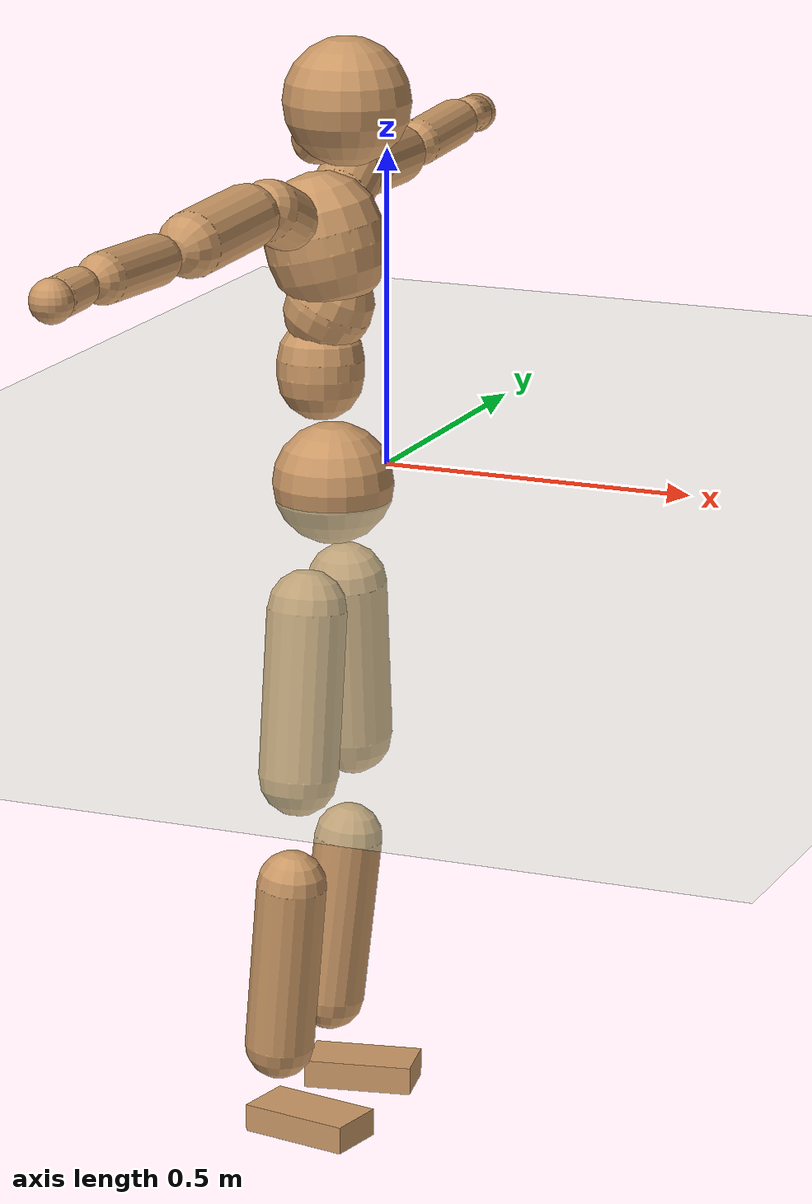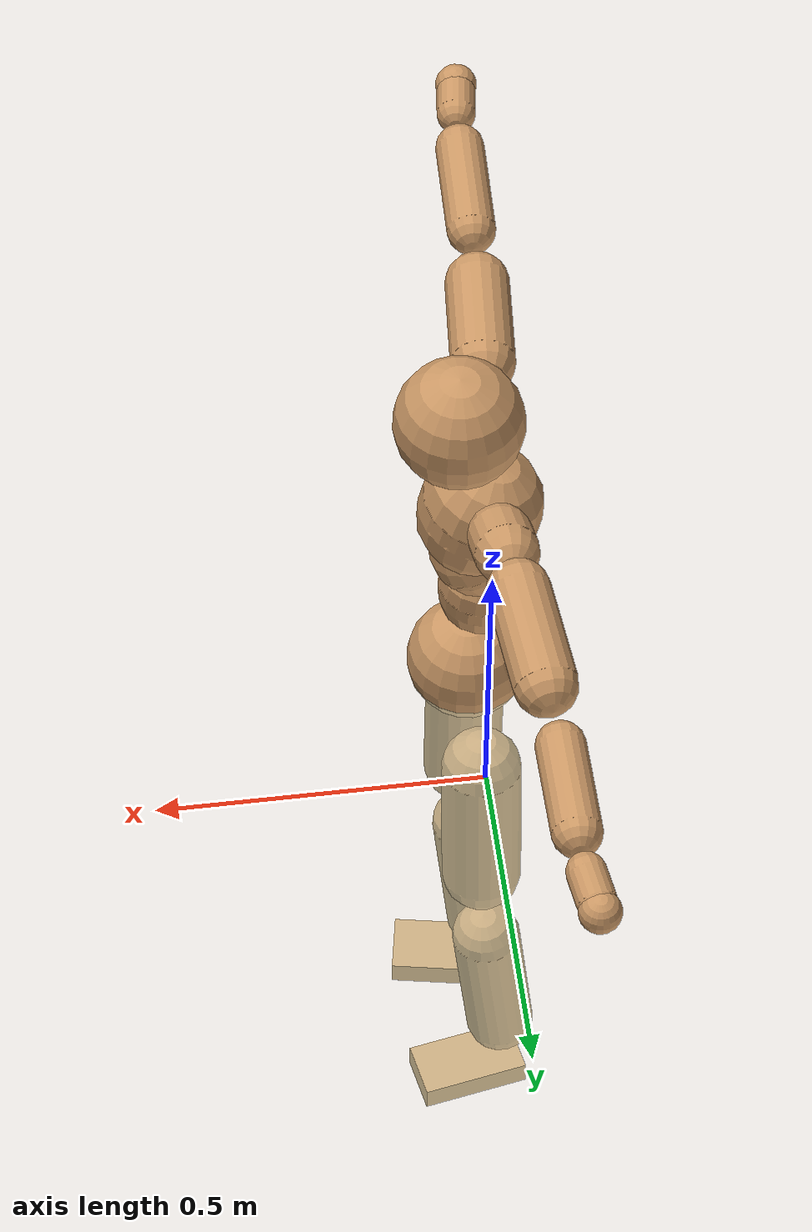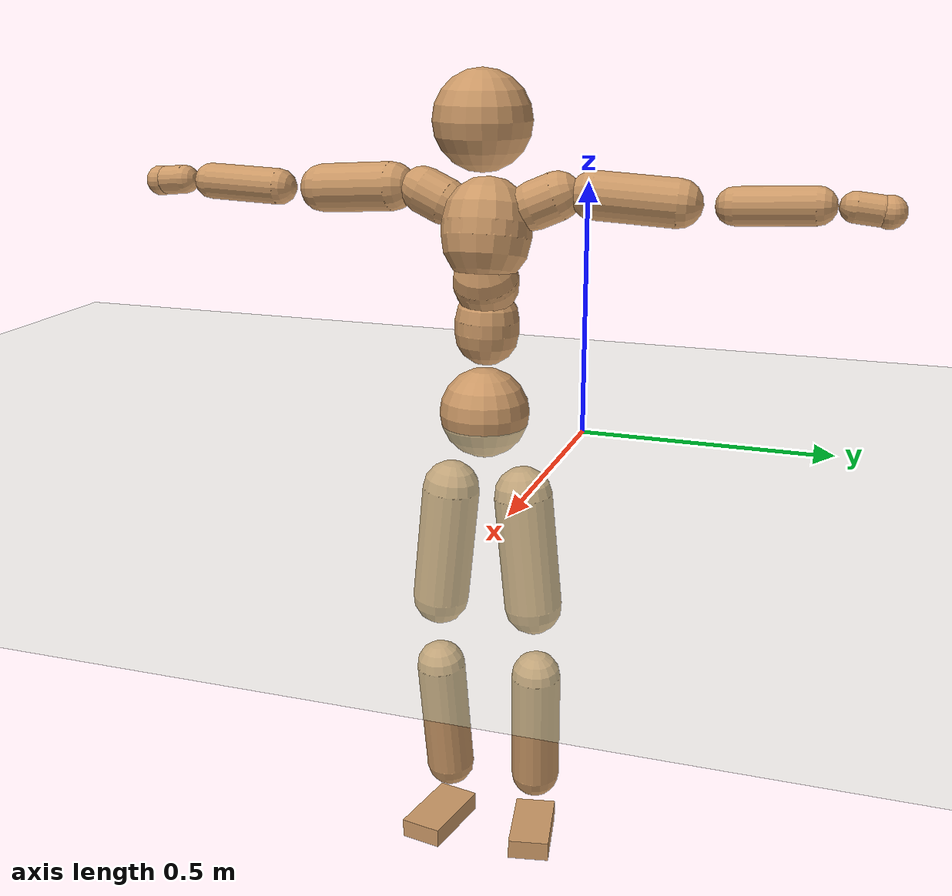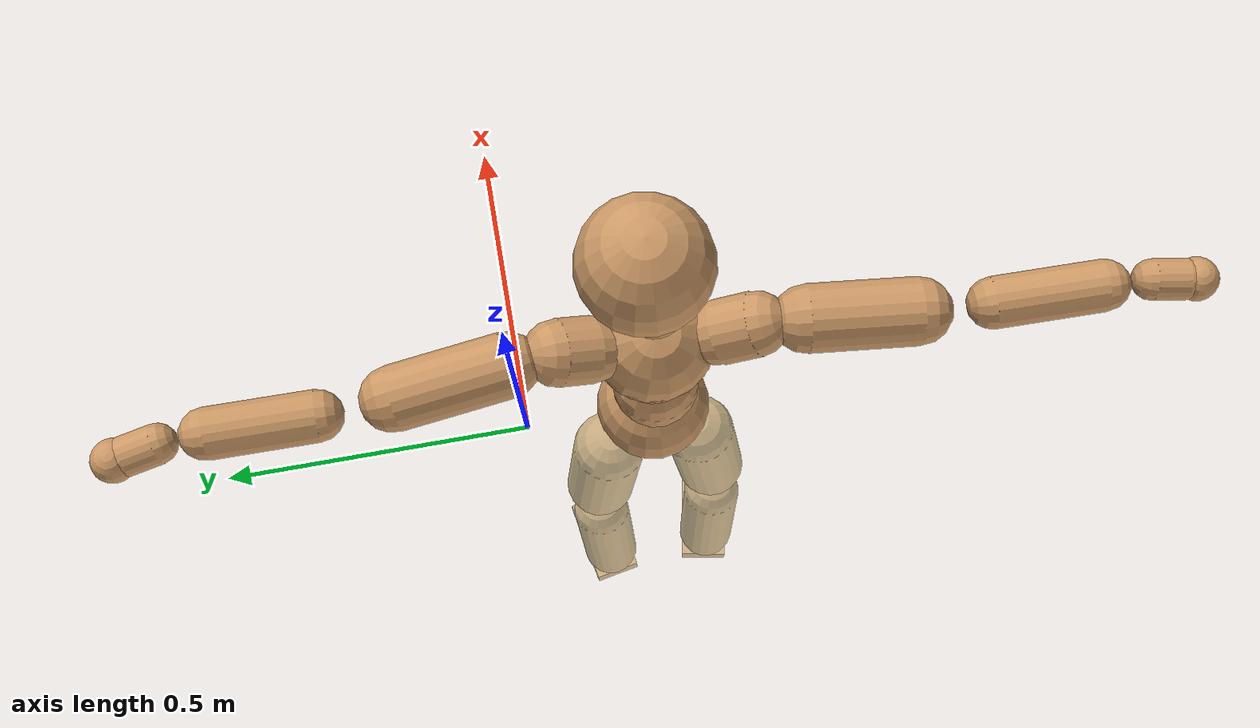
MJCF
<mujoco model="humanoid">
  <compiler coordinate="local" angle="radian"/>
  <default>
    <joint damping="0.0" armature="0.01" stiffness="0.0" limited="true"/>
    <geom conaffinity="1" condim="3" contype="7" margin="0.001" rgba="0.8 0.6 .4 1"/>
  </default>
  <asset>
    <texture type="skybox" builtin="gradient" rgb1=".4 .5 .6" rgb2="0 0 0" width="100" height="100"/>
    <texture builtin="flat" height="1278" mark="cross" markrgb="1 1 1" name="texgeom" random="0.01" rgb1="0.8 0.6 0.4" rgb2="0.8 0.6 0.4" type="cube" width="127"/>
    <texture builtin="checker" height="100" name="texplane" rgb1="0 0 0" rgb2="0.8 0.8 0.8" type="2d" width="100"/>
    <material name="MatPlane" reflectance="0.5" shininess="1" specular="1" texrepeat="60 60" texture="texplane"/>
    <material name="geom" texture="texgeom" texuniform="true"/>
  </asset>
  <worldbody>
    <light cutoff="100" diffuse="1 1 1" dir="-0 0 -1.3" directional="true" exponent="1" pos="0 0 1.3" specular=".1 .1 .1"/>
    <geom conaffinity="1" condim="3" name="floor" pos="0 0 0" rgba="0.8 0.9 0.8 1" size="100 100 .2" type="plane" material="MatPlane"/>
    <body name="Pelvis" pos="-0 -0.2112 0.022">
      <freejoint name="Pelvis"/>
      <geom type="sphere" contype="1" conaffinity="1" density="500" size="0.0936" pos="0.0000 0.0000 0.0000" name="Pelvis"/>
      <body name="L_Hip" pos="-0.0131 0.073 -0.0954">
        <joint name="L_Hip_x" type="hinge" pos="0 0 0" axis="1 0 0" stiffness="800" damping="80" armature="0.02" range="-180.0000 180.0000"/>
        <joint name="L_Hip_y" type="hinge" pos="0 0 0" axis="0 1 0" stiffness="800" damping="80" armature="0.02" range="-180.0000 180.0000"/>
        <joint name="L_Hip_z" type="hinge" pos="0 0 0" axis="0 0 1" stiffness="800" damping="80" armature="0.02" range="-180.0000 180.0000"/>
        <geom type="capsule" contype="1" conaffinity="1" density="500" fromto="-0.0005 0.0081 -0.0846 -0.0018 0.0323 -0.3385" size="0.0623" name="L_Hip"/>
        <body name="L_Knee" pos="-0.0023 0.0403 -0.4231">
          <joint name="L_Knee_x" type="hinge" pos="0 0 0" axis="1 0 0" stiffness="800" damping="80" armature="0.02" range="-180.0000 180.0000"/>
          <joint name="L_Knee_y" type="hinge" pos="0 0 0" axis="0 1 0" stiffness="800" damping="80" armature="0.02" range="-180.0000 180.0000"/>
          <joint name="L_Knee_z" type="hinge" pos="0 0 0" axis="0 0 1" stiffness="800" damping="80" armature="0.02" range="-180.0000 180.0000"/>
          <geom type="capsule" contype="1" conaffinity="1" density="500" fromto="-0.0096 -0.0026 -0.0894 -0.0383 -0.0103 -0.3575" size="0.0542" name="L_Knee"/>
          <body name="L_Ankle" pos="-0.0478 -0.0129 -0.4469">
            <joint name="L_Ankle_x" type="hinge" pos="0 0 0" axis="1 0 0" stiffness="800" damping="80" armature="0.02" range="-180.0000 180.0000"/>
            <joint name="L_Ankle_y" type="hinge" pos="0 0 0" axis="0 1 0" stiffness="800" damping="80" armature="0.02" range="-180.0000 180.0000"/>
            <joint name="L_Ankle_z" type="hinge" pos="0 0 0" axis="0 0 1" stiffness="800" damping="80" armature="0.02" range="-180.0000 180.0000"/>
            <geom type="box" contype="1" conaffinity="1" density="500" pos="0.0615 0.0118 -0.0307" size="0.0857 0.045 0.0222" quat="0.9955 0.0000 0.0000 0.0947" name="L_Ankle"/>
            <body name="L_Toe" pos="0.123 0.0236 -0.0615">
              <joint name="L_Toe_x" type="hinge" pos="0 0 0" axis="1 0 0" stiffness="500" damping="50" armature="0.02" range="-180.0000 180.0000"/>
              <joint name="L_Toe_y" type="hinge" pos="0 0 0" axis="0 1 0" stiffness="500" damping="50" armature="0.02" range="-180.0000 180.0000"/>
              <joint name="L_Toe_z" type="hinge" pos="0 0 0" axis="0 0 1" stiffness="500" damping="50" armature="0.02" range="-180.0000 180.0000"/>
              <geom type="box" contype="1" conaffinity="1" density="500" pos="0.0000 0.0000 0.0303" size="0.0009 0.0023 0.0011" quat="0.9949 0.0000 0.0000 0.1009" name="L_Toe"/>
            </body>
          </body>
        </body>
      </body>
      <body name="R_Hip" pos="-0.0085 -0.0701 -0.0943">
        <joint name="R_Hip_x" type="hinge" pos="0 0 0" axis="1 0 0" stiffness="800" damping="80" armature="0.02" range="-180.0000 180.0000"/>
        <joint name="R_Hip_y" type="hinge" pos="0 0 0" axis="0 1 0" stiffness="800" damping="80" armature="0.02" range="-180.0000 180.0000"/>
        <joint name="R_Hip_z" type="hinge" pos="0 0 0" axis="0 0 1" stiffness="800" damping="80" armature="0.02" range="-180.0000 180.0000"/>
        <geom type="capsule" contype="1" conaffinity="1" density="500" fromto="-0.0011 -0.0094 -0.0863 -0.0043 -0.0378 -0.3453" size="0.0613" name="R_Hip"/>
        <body name="R_Knee" pos="-0.0054 -0.0472 -0.4316">
          <joint name="R_Knee_x" type="hinge" pos="0 0 0" axis="1 0 0" stiffness="800" damping="80" armature="0.02" range="-180.0000 180.0000"/>
          <joint name="R_Knee_y" type="hinge" pos="0 0 0" axis="0 1 0" stiffness="800" damping="80" armature="0.02" range="-180.0000 180.0000"/>
          <joint name="R_Knee_z" type="hinge" pos="0 0 0" axis="0 0 1" stiffness="800" damping="80" armature="0.02" range="-180.0000 180.0000"/>
          <geom type="capsule" contype="1" conaffinity="1" density="500" fromto="-0.0090 0.0034 -0.0894 -0.0359 0.0135 -0.3578" size="0.0545" name="R_Knee"/>
          <body name="R_Ankle" pos="-0.0449 0.0168 -0.4472">
            <joint name="R_Ankle_x" type="hinge" pos="0 0 0" axis="1 0 0" stiffness="800" damping="80" armature="0.02" range="-180.0000 180.0000"/>
            <joint name="R_Ankle_y" type="hinge" pos="0 0 0" axis="0 1 0" stiffness="800" damping="80" armature="0.02" range="-180.0000 180.0000"/>
            <joint name="R_Ankle_z" type="hinge" pos="0 0 0" axis="0 0 1" stiffness="800" damping="80" armature="0.02" range="-180.0000 180.0000"/>
            <geom type="box" contype="1" conaffinity="1" density="500" pos="0.0632 -0.0117 -0.0266" size="0.0881 0.0467 0.0216" quat="0.9958 0.0000 0.0000 -0.0911" name="R_Ankle"/>
            <body name="R_Toe" pos="0.1265 -0.0233 -0.0533">
              <joint name="R_Toe_x" type="hinge" pos="0 0 0" axis="1 0 0" stiffness="500" damping="50" armature="0.02" range="-180.0000 180.0000"/>
              <joint name="R_Toe_y" type="hinge" pos="0 0 0" axis="0 1 0" stiffness="500" damping="50" armature="0.02" range="-180.0000 180.0000"/>
              <joint name="R_Toe_z" type="hinge" pos="0 0 0" axis="0 0 1" stiffness="500" damping="50" armature="0.02" range="-180.0000 180.0000"/>
              <geom type="box" contype="1" conaffinity="1" density="500" pos="0.0000 0.0000 0.0288" size="0.0008 0.0023 0.0012" quat="0.9966 0.0000 0.0000 -0.0822" name="R_Toe"/>
            </body>
          </body>
        </body>
      </body>
      <body name="Torso" pos="-0.019 -0.0027 0.1093">
        <joint name="Torso_x" type="hinge" pos="0 0 0" axis="1 0 0" stiffness="1000" damping="100" armature="0.02" range="-180.0000 180.0000"/>
        <joint name="Torso_y" type="hinge" pos="0 0 0" axis="0 1 0" stiffness="1000" damping="100" armature="0.02" range="-180.0000 180.0000"/>
        <joint name="Torso_z" type="hinge" pos="0 0 0" axis="0 0 1" stiffness="1000" damping="100" armature="0.02" range="-180.0000 180.0000"/>
        <geom type="capsule" contype="1" conaffinity="1" density="500" fromto="-0.0005 0.0023 0.0824 -0.0003 0.0015 0.0550" size="0.0667" name="Torso"/>
        <body name="Spine" pos="-0.0008 0.0038 0.1374">
          <joint name="Spine_x" type="hinge" pos="0 0 0" axis="1 0 0" stiffness="1000" damping="100" armature="0.02" range="-180.0000 180.0000"/>
          <joint name="Spine_y" type="hinge" pos="0 0 0" axis="0 1 0" stiffness="1000" damping="100" armature="0.02" range="-180.0000 180.0000"/>
          <joint name="Spine_z" type="hinge" pos="0 0 0" axis="0 0 1" stiffness="1000" damping="100" armature="0.02" range="-180.0000 180.0000"/>
          <geom type="capsule" contype="1" conaffinity="1" density="500" fromto="0.0161 0.0008 0.0307 0.0107 0.0005 0.0205" size="0.0672" name="Spine"/>
          <body name="Chest" pos="0.0268 0.0013 0.0511">
            <joint name="Chest_x" type="hinge" pos="0 0 0" axis="1 0 0" stiffness="1000" damping="100" armature="0.02" range="-180.0000 180.0000"/>
            <joint name="Chest_y" type="hinge" pos="0 0 0" axis="0 1 0" stiffness="1000" damping="100" armature="0.02" range="-180.0000 180.0000"/>
            <joint name="Chest_z" type="hinge" pos="0 0 0" axis="0 0 1" stiffness="1000" damping="100" armature="0.02" range="-180.0000 180.0000"/>
            <geom type="capsule" contype="1" conaffinity="1" density="500" fromto="-0.0230 -0.0011 0.0905 -0.0153 -0.0007 0.0604" size="0.0916" name="Chest"/>
            <body name="Neck" pos="-0.0408 -0.0033 0.2174">
              <joint name="Neck_x" type="hinge" pos="0 0 0" axis="1 0 0" stiffness="500" damping="50" armature="0.02" range="-180.0000 180.0000"/>
              <joint name="Neck_y" type="hinge" pos="0 0 0" axis="0 1 0" stiffness="500" damping="50" armature="0.02" range="-180.0000 180.0000"/>
              <joint name="Neck_z" type="hinge" pos="0 0 0" axis="0 0 1" stiffness="500" damping="50" armature="0.02" range="-180.0000 180.0000"/>
              <geom type="capsule" contype="1" conaffinity="1" density="500" fromto="0.0113 0.0013 0.0145 0.0451 0.0050 0.0579" size="0.0403" name="Neck"/>
              <body name="Head" pos="0.0564 0.0063 0.0724">
                <joint name="Head_x" type="hinge" pos="0 0 0" axis="1 0 0" stiffness="500" damping="50" armature="0.02" range="-180.0000 180.0000"/>
                <joint name="Head_y" type="hinge" pos="0 0 0" axis="0 1 0" stiffness="500" damping="50" armature="0.02" range="-180.0000 180.0000"/>
                <joint name="Head_z" type="hinge" pos="0 0 0" axis="0 0 1" stiffness="500" damping="50" armature="0.02" range="-180.0000 180.0000"/>
                <geom type="sphere" contype="1" conaffinity="1" density="500" size="0.0976" pos="0.0000 0.0000 0.0000" name="Head"/>
              </body>
            </body>
            <body name="L_Thorax" pos="-0.0342 0.0739 0.1186">
              <joint name="L_Thorax_x" type="hinge" pos="0 0 0" axis="1 0 0" stiffness="500" damping="50" armature="0.02" range="-180.0000 180.0000"/>
              <joint name="L_Thorax_y" type="hinge" pos="0 0 0" axis="0 1 0" stiffness="500" damping="50" armature="0.02" range="-180.0000 180.0000"/>
              <joint name="L_Thorax_z" type="hinge" pos="0 0 0" axis="0 0 1" stiffness="500" damping="50" armature="0.02" range="-180.0000 180.0000"/>
              <geom type="capsule" contype="1" conaffinity="1" density="500" fromto="-0.0011 0.0162 0.0070 -0.0044 0.0648 0.0279" size="0.0487" name="L_Thorax"/>
              <body name="L_Shoulder" pos="-0.0055 0.081 0.0349">
                <joint name="L_Shoulder_x" type="hinge" pos="0 0 0" axis="1 0 0" stiffness="500" damping="50" armature="0.02" range="-720.0000 720.0000"/>
                <joint name="L_Shoulder_y" type="hinge" pos="0 0 0" axis="0 1 0" stiffness="500" damping="50" armature="0.02" range="-720.0000 720.0000"/>
                <joint name="L_Shoulder_z" type="hinge" pos="0 0 0" axis="0 0 1" stiffness="500" damping="50" armature="0.02" range="-720.0000 720.0000"/>
                <geom type="capsule" contype="1" conaffinity="1" density="500" fromto="-0.0056 0.0546 -0.0036 -0.0224 0.2185 -0.0146" size="0.0479" name="L_Shoulder"/>
                <body name="L_Elbow" pos="-0.028 0.2732 -0.0182">
                  <joint name="L_Elbow_x" type="hinge" pos="0 0 0" axis="1 0 0" stiffness="500" damping="50" armature="0.02" range="-720.0000 720.0000"/>
                  <joint name="L_Elbow_y" type="hinge" pos="0 0 0" axis="0 1 0" stiffness="500" damping="50" armature="0.02" range="-720.0000 720.0000"/>
                  <joint name="L_Elbow_z" type="hinge" pos="0 0 0" axis="0 0 1" stiffness="500" damping="50" armature="0.02" range="-720.0000 720.0000"/>
                  <geom type="capsule" contype="1" conaffinity="1" density="500" fromto="-0.0003 0.0514 0.0023 -0.0010 0.2054 0.0093" size="0.0374" name="L_Elbow"/>
                  <body name="L_Wrist" pos="-0.0013 0.2568 0.0116">
                    <joint name="L_Wrist_x" type="hinge" pos="0 0 0" axis="1 0 0" stiffness="300" damping="30" armature="0.02" range="-180.0000 180.0000"/>
                    <joint name="L_Wrist_y" type="hinge" pos="0 0 0" axis="0 1 0" stiffness="300" damping="30" armature="0.02" range="-180.0000 180.0000"/>
                    <joint name="L_Wrist_z" type="hinge" pos="0 0 0" axis="0 0 1" stiffness="300" damping="30" armature="0.02" range="-180.0000 180.0000"/>
                    <geom type="capsule" contype="1" conaffinity="1" density="500" fromto="-0.0027 0.0158 -0.0020 -0.0107 0.0631 -0.0079" size="0.0295" name="L_Wrist"/>
                    <body name="L_Hand" pos="-0.0134 0.0789 -0.0099">
                      <joint name="L_Hand_x" type="hinge" pos="0 0 0" axis="1 0 0" stiffness="300" damping="30" armature="0.02" range="-180.0000 180.0000"/>
                      <joint name="L_Hand_y" type="hinge" pos="0 0 0" axis="0 1 0" stiffness="300" damping="30" armature="0.02" range="-180.0000 180.0000"/>
                      <joint name="L_Hand_z" type="hinge" pos="0 0 0" axis="0 0 1" stiffness="300" damping="30" armature="0.02" range="-180.0000 180.0000"/>
                      <geom type="sphere" contype="1" conaffinity="1" density="500" size="0.0317" pos="0.0000 0.0000 0.0000" name="L_Hand"/>
                    </body>
                  </body>
                </body>
              </body>
            </body>
            <body name="R_Thorax" pos="-0.0398 -0.076 0.1167">
              <joint name="R_Thorax_x" type="hinge" pos="0 0 0" axis="1 0 0" stiffness="500" damping="50" armature="0.02" range="-180.0000 180.0000"/>
              <joint name="R_Thorax_y" type="hinge" pos="0 0 0" axis="0 1 0" stiffness="500" damping="50" armature="0.02" range="-180.0000 180.0000"/>
              <joint name="R_Thorax_z" type="hinge" pos="0 0 0" axis="0 0 1" stiffness="500" damping="50" armature="0.02" range="-180.0000 180.0000"/>
              <geom type="capsule" contype="1" conaffinity="1" density="500" fromto="-0.0014 -0.0170 0.0074 -0.0057 -0.0679 0.0297" size="0.0476" name="R_Thorax"/>
              <body name="R_Shoulder" pos="-0.0071 -0.0849 0.0371">
                <joint name="R_Shoulder_x" type="hinge" pos="0 0 0" axis="1 0 0" stiffness="500" damping="50" armature="0.02" range="-720.0000 720.0000"/>
                <joint name="R_Shoulder_y" type="hinge" pos="0 0 0" axis="0 1 0" stiffness="500" damping="50" armature="0.02" range="-720.0000 720.0000"/>
                <joint name="R_Shoulder_z" type="hinge" pos="0 0 0" axis="0 0 1" stiffness="500" damping="50" armature="0.02" range="-720.0000 720.0000"/>
                <geom type="capsule" contype="1" conaffinity="1" density="500" fromto="-0.0044 -0.0533 -0.0037 -0.0176 -0.2133 -0.0150" size="0.0496" name="R_Shoulder"/>
                <body name="R_Elbow" pos="-0.0219 -0.2666 -0.0187">
                  <joint name="R_Elbow_x" type="hinge" pos="0 0 0" axis="1 0 0" stiffness="500" damping="50" armature="0.02" range="-720.0000 720.0000"/>
                  <joint name="R_Elbow_y" type="hinge" pos="0 0 0" axis="0 1 0" stiffness="500" damping="50" armature="0.02" range="-720.0000 720.0000"/>
                  <joint name="R_Elbow_z" type="hinge" pos="0 0 0" axis="0 0 1" stiffness="500" damping="50" armature="0.02" range="-720.0000 720.0000"/>
                  <geom type="capsule" contype="1" conaffinity="1" density="500" fromto="-0.0013 -0.0534 0.0018 -0.0052 -0.2136 0.0073" size="0.0378" name="R_Elbow"/>
                  <body name="R_Wrist" pos="-0.0066 -0.267 0.0091">
                    <joint name="R_Wrist_x" type="hinge" pos="0 0 0" axis="1 0 0" stiffness="300" damping="30" armature="0.02" range="-180.0000 180.0000"/>
                    <joint name="R_Wrist_y" type="hinge" pos="0 0 0" axis="0 1 0" stiffness="300" damping="30" armature="0.02" range="-180.0000 180.0000"/>
                    <joint name="R_Wrist_z" type="hinge" pos="0 0 0" axis="0 0 1" stiffness="300" damping="30" armature="0.02" range="-180.0000 180.0000"/>
                    <geom type="capsule" contype="1" conaffinity="1" density="500" fromto="-0.0021 -0.0160 -0.0015 -0.0083 -0.0642 -0.0058" size="0.0303" name="R_Wrist"/>
                    <body name="R_Hand" pos="-0.0104 -0.0802 -0.0073">
                      <joint name="R_Hand_x" type="hinge" pos="0 0 0" axis="1 0 0" stiffness="300" damping="30" armature="0.02" range="-180.0000 180.0000"/>
                      <joint name="R_Hand_y" type="hinge" pos="0 0 0" axis="0 1 0" stiffness="300" damping="30" armature="0.02" range="-180.0000 180.0000"/>
                      <joint name="R_Hand_z" type="hinge" pos="0 0 0" axis="0 0 1" stiffness="300" damping="30" armature="0.02" range="-180.0000 180.0000"/>
                      <geom type="sphere" contype="1" conaffinity="1" density="500" size="0.0321" pos="0.0000 0.0000 0.0000" name="R_Hand"/>
                    </body>
                  </body>
                </body>
              </body>
            </body>
          </body>
        </body>
      </body>
    </body>
  </worldbody>
  <actuator>
    <motor name="L_Hip_x" joint="L_Hip_x" gear="500"/>
    <motor name="L_Hip_y" joint="L_Hip_y" gear="500"/>
    <motor name="L_Hip_z" joint="L_Hip_z" gear="500"/>
    <motor name="L_Knee_x" joint="L_Knee_x" gear="500"/>
    <motor name="L_Knee_y" joint="L_Knee_y" gear="500"/>
    <motor name="L_Knee_z" joint="L_Knee_z" gear="500"/>
    <motor name="L_Ankle_x" joint="L_Ankle_x" gear="500"/>
    <motor name="L_Ankle_y" joint="L_Ankle_y" gear="500"/>
    <motor name="L_Ankle_z" joint="L_Ankle_z" gear="500"/>
    <motor name="L_Toe_x" joint="L_Toe_x" gear="500"/>
    <motor name="L_Toe_y" joint="L_Toe_y" gear="500"/>
    <motor name="L_Toe_z" joint="L_Toe_z" gear="500"/>
    <motor name="R_Hip_x" joint="R_Hip_x" gear="500"/>
    <motor name="R_Hip_y" joint="R_Hip_y" gear="500"/>
    <motor name="R_Hip_z" joint="R_Hip_z" gear="500"/>
    <motor name="R_Knee_x" joint="R_Knee_x" gear="500"/>
    <motor name="R_Knee_y" joint="R_Knee_y" gear="500"/>
    <motor name="R_Knee_z" joint="R_Knee_z" gear="500"/>
    <motor name="R_Ankle_x" joint="R_Ankle_x" gear="500"/>
    <motor name="R_Ankle_y" joint="R_Ankle_y" gear="500"/>
    <motor name="R_Ankle_z" joint="R_Ankle_z" gear="500"/>
    <motor name="R_Toe_x" joint="R_Toe_x" gear="500"/>
    <motor name="R_Toe_y" joint="R_Toe_y" gear="500"/>
    <motor name="R_Toe_z" joint="R_Toe_z" gear="500"/>
    <motor name="Torso_x" joint="Torso_x" gear="500"/>
    <motor name="Torso_y" joint="Torso_y" gear="500"/>
    <motor name="Torso_z" joint="Torso_z" gear="500"/>
    <motor name="Spine_x" joint="Spine_x" gear="500"/>
    <motor name="Spine_y" joint="Spine_y" gear="500"/>
    <motor name="Spine_z" joint="Spine_z" gear="500"/>
    <motor name="Chest_x" joint="Chest_x" gear="500"/>
    <motor name="Chest_y" joint="Chest_y" gear="500"/>
    <motor name="Chest_z" joint="Chest_z" gear="500"/>
    <motor name="Neck_x" joint="Neck_x" gear="500"/>
    <motor name="Neck_y" joint="Neck_y" gear="500"/>
    <motor name="Neck_z" joint="Neck_z" gear="500"/>
    <motor name="Head_x" joint="Head_x" gear="500"/>
    <motor name="Head_y" joint="Head_y" gear="500"/>
    <motor name="Head_z" joint="Head_z" gear="500"/>
    <motor name="L_Thorax_x" joint="L_Thorax_x" gear="500"/>
    <motor name="L_Thorax_y" joint="L_Thorax_y" gear="500"/>
    <motor name="L_Thorax_z" joint="L_Thorax_z" gear="500"/>
    <motor name="L_Shoulder_x" joint="L_Shoulder_x" gear="500"/>
    <motor name="L_Shoulder_y" joint="L_Shoulder_y" gear="500"/>
    <motor name="L_Shoulder_z" joint="L_Shoulder_z" gear="500"/>
    <motor name="L_Elbow_x" joint="L_Elbow_x" gear="500"/>
    <motor name="L_Elbow_y" joint="L_Elbow_y" gear="500"/>
    <motor name="L_Elbow_z" joint="L_Elbow_z" gear="500"/>
    <motor name="L_Wrist_x" joint="L_Wrist_x" gear="500"/>
    <motor name="L_Wrist_y" joint="L_Wrist_y" gear="500"/>
    <motor name="L_Wrist_z" joint="L_Wrist_z" gear="500"/>
    <motor name="L_Hand_x" joint="L_Hand_x" gear="500"/>
    <motor name="L_Hand_y" joint="L_Hand_y" gear="500"/>
    <motor name="L_Hand_z" joint="L_Hand_z" gear="500"/>
    <motor name="R_Thorax_x" joint="R_Thorax_x" gear="500"/>
    <motor name="R_Thorax_y" joint="R_Thorax_y" gear="500"/>
    <motor name="R_Thorax_z" joint="R_Thorax_z" gear="500"/>
    <motor name="R_Shoulder_x" joint="R_Shoulder_x" gear="500"/>
    <motor name="R_Shoulder_y" joint="R_Shoulder_y" gear="500"/>
    <motor name="R_Shoulder_z" joint="R_Shoulder_z" gear="500"/>
    <motor name="R_Elbow_x" joint="R_Elbow_x" gear="500"/>
    <motor name="R_Elbow_y" joint="R_Elbow_y" gear="500"/>
    <motor name="R_Elbow_z" joint="R_Elbow_z" gear="500"/>
    <motor name="R_Wrist_x" joint="R_Wrist_x" gear="500"/>
    <motor name="R_Wrist_y" joint="R_Wrist_y" gear="500"/>
    <motor name="R_Wrist_z" joint="R_Wrist_z" gear="500"/>
    <motor name="R_Hand_x" joint="R_Hand_x" gear="500"/>
    <motor name="R_Hand_y" joint="R_Hand_y" gear="500"/>
    <motor name="R_Hand_z" joint="R_Hand_z" gear="500"/>
  </actuator>
  <contact>
    <exclude body1="Torso" body2="Chest"/>
    <exclude body1="Head" body2="Chest"/>
    <exclude body1="R_Knee" body2="R_Toe"/>
    <exclude body1="R_Knee" body2="L_Ankle"/>
    <exclude body1="R_Knee" body2="L_Toe"/>
    <exclude body1="L_Knee" body2="L_Toe"/>
    <exclude body1="L_Knee" body2="R_Ankle"/>
    <exclude body1="L_Knee" body2="R_Toe"/>
    <exclude body1="L_Shoulder" body2="Chest"/>
    <exclude body1="R_Shoulder" body2="Chest"/>
  </contact>
  <sensor/>
  <size njmax="700" nconmax="700"/>
</mujoco>
